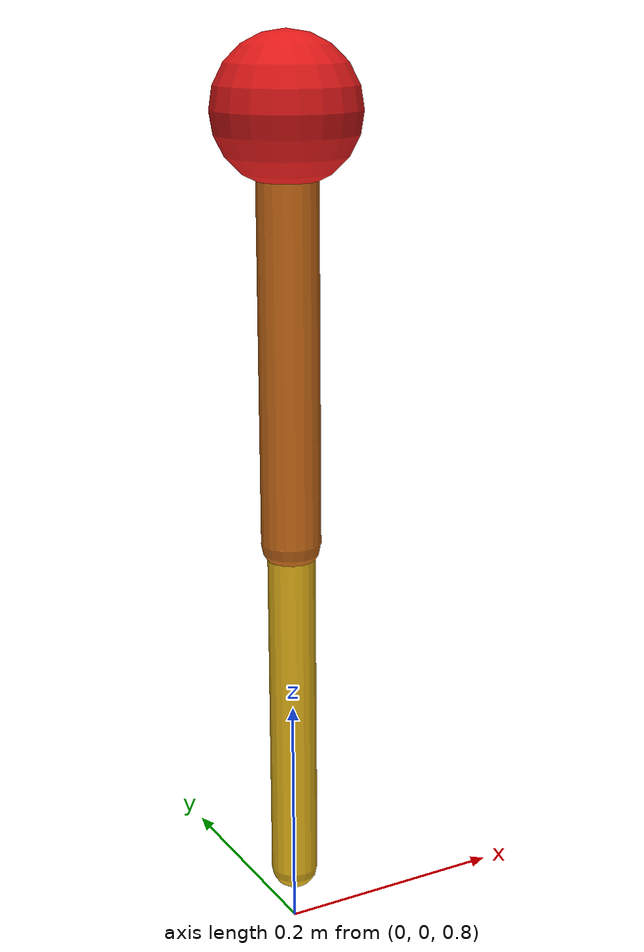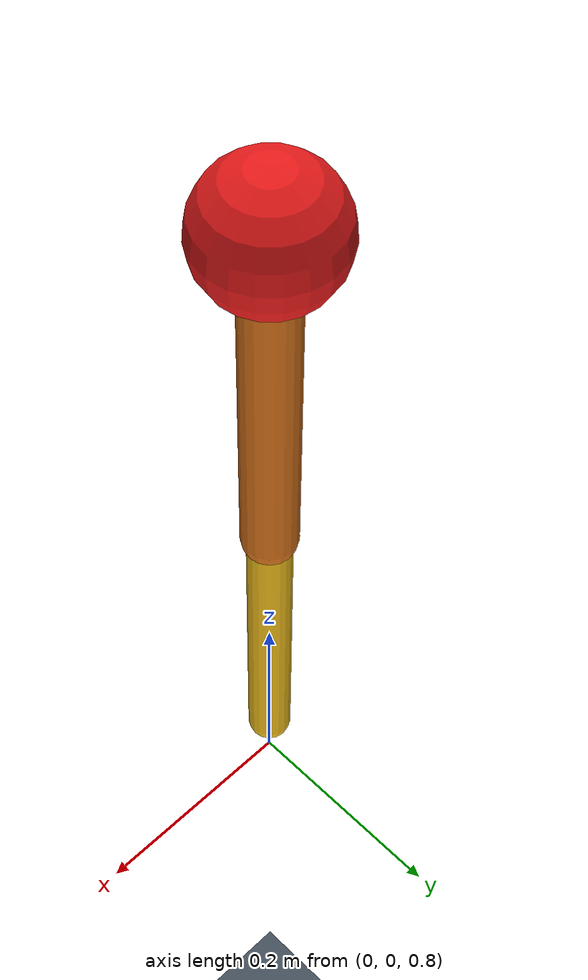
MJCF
<mujoco model="double_pendulum_testbed">

  <compiler angle="radian" autolimits="true"/>

  <option timestep="0.002" gravity="0 0 -9.81" integrator="implicitfast"/>

  <default>
    <joint armature="0.01" damping="0.05"/>
    <geom friction="0.8 0.005 0.0001" density="1000"/>
  </default>

  <visual>
    <headlight diffuse="0.7 0.7 0.7" ambient="0.3 0.3 0.3"/>
    <global azimuth="135" elevation="-20"/>
  </visual>

  <asset>
    <texture type="skybox" builtin="gradient" rgb1="0.4 0.5 0.6" rgb2="0.1 0.1 0.15" width="256" height="256"/>
    <texture name="grid" type="2d" builtin="checker" rgb1="0.2 0.25 0.3" rgb2="0.3 0.35 0.4" width="300" height="300"/>
    <material name="grid_mat" texture="grid" texrepeat="6 6" reflectance="0.1"/>
    <material name="anchor_mat" rgba="0.9 0.1 0.1 1"/>
    <material name="arm1_mat" rgba="0.85 0.45 0.1 1"/>
    <material name="arm2_mat" rgba="0.95 0.75 0.1 1"/>
  </asset>

  <worldbody>
    <light pos="0 -1 2" dir="0 0.4 -1"/>
    <geom name="floor" type="plane" size="2 2 0.05" material="grid_mat"/>

    <!-- Fixed anchor ball, welded to the world in mid-air -->
    <body name="anchor" pos="0 0 1.5">
      <geom name="ball" type="sphere" size="0.06" material="anchor_mat"/>

      <!-- Arm 1: ACTUATED shoulder hinge at the ball -->
      <body name="arm1" pos="0 0 0">
        <joint name="shoulder" type="hinge" axis="0 1 0" range="-2.0944 2.0944"/>
        <geom name="link1" type="capsule" fromto="0 0 0  0 0 -0.35" size="0.025" material="arm1_mat"/>

        <!-- Arm 2: PASSIVE elbow hinge at the end of arm 1 -->
        <body name="arm2" pos="0 0 -0.35">
          <joint name="elbow" type="hinge" axis="0 1 0" range="-2.7925 2.7925" damping="0.1"/>
          <geom name="link2" type="capsule" fromto="0 0 0  0 0 -0.3" size="0.02" material="arm2_mat"/>
          <site name="tip" pos="0 0 -0.3" size="0.01"/>
        </body>
      </body>
    </body>
  </worldbody>

  <contact>
    <exclude body1="anchor" body2="arm1"/>
  </contact>

  <actuator>
    <!-- PD position servo on the SHOULDER only. Elbow is passive. -->
    <position name="shoulder_servo" joint="shoulder" kp="20" kv="2"
              ctrlrange="-2.0944 2.0944" forcerange="-30 30"/>
  </actuator>

  <sensor>
    <jointpos name="shoulder_pos" joint="shoulder"/>
    <jointvel name="shoulder_vel" joint="shoulder"/>
    <actuatorfrc name="servo_torque" actuator="shoulder_servo"/>
    <jointpos name="elbow_pos" joint="elbow"/>
  </sensor>
</mujoco>
